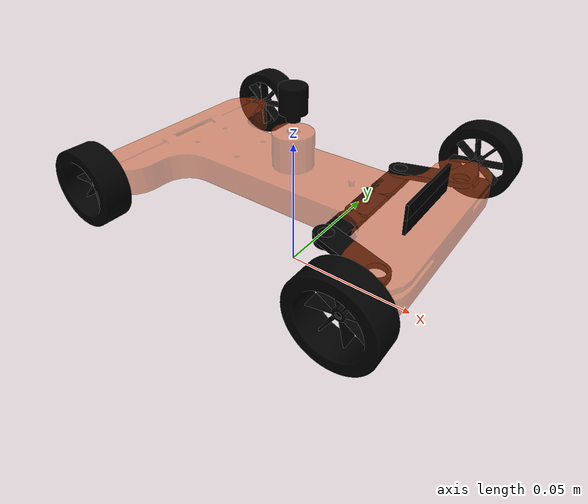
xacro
<?xml version="1.0" encoding="utf-8"?>

<robot name="mycar"  xmlns:xacro="http://www.ros.org/wiki/xacro">

    <xacro:include filename="$(find car)/urdf/macros.xacro" />

    <link name="base_footprint">
    </link>

    <link name="base_link">
        <visual>
            <geometry>
                <mesh
          filename="package://car/meshes/body.STL" />
            </geometry>

            <origin xyz="0 0 0"
                    rpy="0 0 0" />
            <material name="yellow">
                <color rgba="0.8 0.3 0.1 0.5" />
            </material>
        </visual>
        <collision>
            <geometry>
                <mesh
          filename="package://car/meshes/body.STL" />
            </geometry>
            <origin xyz="0.0 0.0 0.0" rpy="0.0 0.0 0.0" />
        </collision>

    </link>

    <joint name="base_link2base_footprint" type="fixed">
        <parent link="base_footprint" />
        <child link="base_link"/>
        <origin xyz="0 0 0.032" rpy="0 0 0" />
    </joint>

    <link name="base_inertia">
    <inertial>
            <origin xyz="0 0 0" />
            <mass value="4" />
            <inertia ixx="0.0264" ixy="0" ixz="0" iyy="0.0294" iyz="0" izz="0.00364" />
        </inertial>
    </link>

    <joint name="chassis_inertia_joint" type="fixed">
    <origin xyz="0 0 0" rpy="0 0 0" />
    <parent link="base_link" />
    <child link="base_inertia" />
  </joint>

  <link name="left_steering_hinge">
    <inertial>
      <origin
        xyz="-0.0075378 0.00017726 -6.2884E-18"
        rpy="0 0 0" />
      <mass
        value="0.5" />
      <inertia
        ixx="1.35E-05" ixy="0" ixz="0" iyy="1.35E-05" iyz="0" izz="2.5E-05" />
    </inertial>
        <visual>
            <geometry>
              <mesh
                filename="package://car/meshes/front_wheel_L.STL" />
            </geometry>
            <origin xyz="0 0 0" rpy="0 0 0" />
            <material name="black">
                <color rgba="0.0 0.0 0.0 1.0" />
            </material>
        </visual>
        <collision>
            <geometry>
              <mesh
                filename="package://car/meshes/front_wheel_L.STL" />
            </geometry>
            <origin xyz="0.0 0.0 0.0" rpy="0 0.0 0.0" />
        </collision>
    </link>

    <joint name="left_steering_hinge_joint" type="revolute">
        <parent link="base_link" />
        <child link="left_steering_hinge" />
        <origin xyz="0.049931 0.03 0.007" />
        <axis xyz="0 0 1" />
        <limit lower="-0.6" upper="0.6" effort="5.0" velocity="1000.0"/>
    </joint>

    <link name="left_front_wheel">
    <inertial>
      <origin
        xyz="-4.6218E-06 -0.00018264 -5.5642E-07"
        rpy="0 0 0" />
      <mass
        value="2" />
      <inertia
       ixx="6.64E-04" ixy="0" ixz="0" iyy="6.64E-04" iyz="0" izz="1.02E-03" />
    </inertial>
        <visual>
            <geometry>
        <mesh
          filename="package://car/meshes/front_wheel_L1.STL" />
            </geometry>
            <origin xyz="0 0 0" rpy="0 0 0" />
            <material name="black">
                <color rgba="0.0 0.0 0.0 1.0" />
            </material>
        </visual>
        <collision>
            <geometry>
        <mesh
          filename="package://car/meshes/front_wheel_L1.STL" />
            </geometry>
            <origin xyz="0.0 0.0 0.0" rpy="0 0.0 0.0" />
        </collision>

    </link>

    <joint name="left_front_wheel_joint" type="continuous">
        <parent link="left_steering_hinge" />
        <child link="left_front_wheel" />
        <origin
          xyz="0 0.019012 0"
          rpy="0 0 0" />
        <axis xyz="0 1 0" />
        <limit effort="10" velocity="1000" />
    </joint>

  <link name="right_steering_hinge">
    <inertial>
      <origin
        xyz="-0.0075378 -0.00017726 -3.2526E-18"
        rpy="0 0 0" />
      <mass
        value="0.5" />
      <inertia
        ixx="1.35E-05" ixy="0" ixz="0" iyy="1.35E-05" iyz="0" izz="2.5E-05" />
    </inertial>
        <visual>
            <geometry>
              <mesh
                filename="package://car/meshes/front_wheel_R.STL" />
            </geometry>
            <origin xyz="0 0 0" rpy="0 0 0" />
            <material name="black">
                <color rgba="0.0 0.0 0.0 1.0" />
            </material>
        </visual>
        <collision>
            <geometry>
              <mesh
                filename="package://car/meshes/front_wheel_R.STL" />
            </geometry>
            <origin xyz="0.0 0.0 0.0" rpy="0 0.0 0.0" />
        </collision>
    </link>

    <joint name="right_steering_hinge_joint" type="revolute">
        <parent link="base_link" />
        <child link="right_steering_hinge" />
        <origin xyz="0.049931 -0.03 0.007" />
        <axis xyz="0 0 1" />
        <limit lower="-0.6" upper="0.6" effort="5.0" velocity="1000.0"/>
    </joint>

    <link name="right_front_wheel">
    <inertial>
      <origin
        xyz="3.9313E-06 0.00018264 -2.4931E-06"
        rpy="0 0 0" />
      <mass
        value="2" />
      <inertia
        ixx="6.64E-04" ixy="0" ixz="0" iyy="6.64E-04" iyz="0" izz="1.02E-03" />
    </inertial>
        <visual>
            <geometry>
        <mesh
          filename="package://car/meshes/front_wheel_R1.STL" />
            </geometry>
            <origin xyz="0 0 0" rpy="0 0 0" />
            <material name="black">
                <color rgba="0.0 0.0 0.0 1.0" />
            </material>
        </visual>
        <collision>
            <geometry>
        <mesh
          filename="package://car/meshes/front_wheel_R1.STL" />
            </geometry>
            <origin xyz="0.0 0.0 0.0" rpy="0 0.0 0.0" />
        </collision>

    </link>

    <joint name="right_front_wheel_joint" type="continuous">
        <parent link="right_steering_hinge" />
        <child link="right_front_wheel" />
        <origin
          xyz="0 -0.019012 0"
          rpy="0 0 0" />
        <axis xyz="0 1 0" />
        <limit effort="10" velocity="1000" />
    </joint>

    <link name="left_rear_wheel">
    <inertial>
      <origin
        xyz="3.5237E-07 -0.00018264 -4.6418E-06"
        rpy="0 0 0" />
      <mass
        value="2" />
      <inertia
        ixx="6.64E-04" ixy="0" ixz="0" iyy="6.64E-04" iyz="0" izz="1.02E-03" />
    </inertial>
        <visual>
            <geometry>
        <mesh
          filename="package://car/meshes/rear_wheel_L.STL" />
            </geometry>
            <origin xyz="0 0 0" rpy="0 0 0" />
            <material name="black">
                <color rgba="0.0 0.0 0.0 1.0" />
            </material>
        </visual>
        <collision>
            <geometry>
        <mesh
          filename="package://car/meshes/rear_wheel_L.STL" />
            </geometry>
            <origin xyz="0.0 0.0 0.0" rpy="0 0.0 0.0" />
        </collision>

    </link>

    <joint name="left_rear_wheel_joint" type="continuous">
        <parent link="base_link" />
        <child link="left_rear_wheel" />
        <origin xyz="-0.0500688876737955 0.0474999999999999 0.0070047900366488" />
        <axis xyz="0 1 0" />
        <limit effort="10" velocity="1000" />
    </joint>

    <link name="right_rear_wheel">
    <inertial>
      <origin
        xyz="3.5249E-07 0.00018264 -4.6418E-06"
        rpy="0 0 0" />
      <mass
        value="2" />
      <inertia
        ixx="6.64E-04" ixy="0" ixz="0" iyy="6.64E-04" iyz="0" izz="1.02E-03" />
    </inertial>
        <visual>
            <geometry>
        <mesh
          filename="package://car/meshes/rear_wheel_R.STL" />
            </geometry>
            <origin xyz="0 0 0" rpy="0 0 0" />
            <material name="black">
                <color rgba="0.0 0.0 0.0 1.0" />
            </material>
        </visual>
        <collision>
            <geometry>
        <mesh
          filename="package://car/meshes/rear_wheel_R.STL" />
            </geometry>
            <origin xyz="0.0 0.0 0.0" rpy="0 0.0 0.0" />
        </collision>

    </link>

    <joint name="right_rear_wheel_joint" type="continuous">
        <parent link="base_link" />
        <child link="right_rear_wheel" />
        <origin xyz="-0.0500688876737955 -0.0474999999999999 0.0070047900366488" />
        <axis xyz="0 1 0" />
        <limit effort="10" velocity="1000" />
    </joint>

    <link name="turn">
        <visual>
            <geometry>
        <mesh
          filename="package://car/meshes/base_turn.STL" />
            </geometry>
            <origin xyz="0 0 0" rpy="0 0 0" />
            <material name="black">
                <color rgba="0.0 0.0 0.0 1.0" />
            </material>
        </visual>
        <collision>
            <geometry>
        <mesh
          filename="package://car/meshes/base_turn.STL" />
            </geometry>
            <origin xyz="0.0 0.0 0.0" rpy="0.0 0.0 0.0" />
        </collision>
        <inertial>
            <origin xyz="2.08166817117217E-17 4.16333634234434E-17 -0.00577995533563398" />
            <mass value="0.05" />
            <inertia ixx="6.64E-04" ixy="0" ixz="0" iyy="6.64E-04" iyz="0" izz="1.02E-03" />
        </inertial>
    </link>

    <joint name="turn_joint" type="fixed">
        <parent link="base_link" />
        <child link="turn" />
        <origin xyz="0.029931 0 0.011" />
        <axis xyz="0 0 1" />
    </joint>

    <link name="lidar">
    <inertial>
      <origin
        xyz="-8.67361737988404E-19 -1.38777878078145E-17 -0.00549365953697964"
        rpy="0 0 0" />
      <mass
        value="0.1" />
      <inertia
        ixx="6.64E-04" ixy="0" ixz="0" iyy="6.64E-04" iyz="0" izz="1.02E-03" />
    </inertial>
        <visual>
            <geometry>
        <mesh
          filename="package://car/meshes/camera.STL" />
            </geometry>
            <origin xyz="0 0 0" rpy="0 0 0" />
            <material name="red">
                <color rgba="0.0 0.0 0.0 1.0" />
            </material>
        </visual>
        <collision>
            <geometry>
        <mesh
          filename="package://car/meshes/camera.STL" />
            </geometry>
            <origin xyz="0.0 0.0 0.0" rpy="0.0 0.0 0.0" />
        </collision>
    </link>

    <joint name="lidar_joint" type="fixed">
        <parent link="base_link" />
        <child link="lidar" />
        <origin xyz="-6.8524E-05 0 0.04" />
        <axis xyz="0 0 -1" />
    </joint>

    <link name="camera">
        <visual>
            <geometry>
                <box size="0.001 0.03 0.005"/>
            </geometry>
            <origin xyz="0 0 0" rpy="0 0 0" />
            <material name="black">
                <color rgba="0.0 0.0 0.0 1.0" />
            </material>
        </visual>
        <collision>
            <geometry>
                <box size="0.001 0.03 0.005"/>
            </geometry>
            <origin xyz="0.0 0.0 0.0" rpy="0.0 0.0 0.0" />
        </collision>
        <inertial>
            <origin xyz="0 0 0" />
            <mass value="0.05" />
            <inertia ixx="6.64E-04" ixy="0" ixz="0" iyy="6.64E-04" iyz="0" izz="1.02E-03" />
        </inertial>
    </link>

    <joint name="camera_joint" type="fixed">
        <parent link="base_link" />
        <child link="camera" />
        <origin xyz="0.05 0.0 0.018" />
        <axis xyz="0 0 1" />
    </joint>

    <link name="real_sense">
        <visual>
            <geometry>
                <box size="0.001 0.03 0.005"/>
            </geometry>
            <origin xyz="0 0 0" rpy="0 0 0" />
            <material name="black">
                <color rgba="0.0 0.0 0.0 1.0" />
            </material>
        </visual>
        <collision>
            <geometry>
                <box size="0.001 0.03 0.005"/>
            </geometry>
            <origin xyz="0.0 0.0 0.0" rpy="0.0 0.0 0.0" />
        </collision>
        <inertial>
            <origin xyz="0 0 0" />
            <mass value="0.05" />
            <inertia ixx="6.64E-04" ixy="0" ixz="0" iyy="6.64E-04" iyz="0" izz="1.02E-03" />
        </inertial>
    </link>

    <joint name="realsense_joint" type="fixed">
        <parent link="base_link" />
        <child link="real_sense" />
        <origin xyz="0.05 0.0 0.013" />
        <axis xyz="0 0 1" />
    </joint>

       <xacro:steering_hinge_transmission name="left_steering_hinge" />
       <xacro:steering_hinge_transmission name="right_steering_hinge" />
      <xacro:wheel_transmission name="left_front_wheel" />
      <xacro:wheel_transmission name="right_front_wheel" />
      <xacro:wheel_transmission name="right_rear_wheel" />
     <xacro:wheel_transmission name="left_rear_wheel" />

  <xacro:include filename="$(find car)/urdf/mycar.gazebo" />

</robot>
